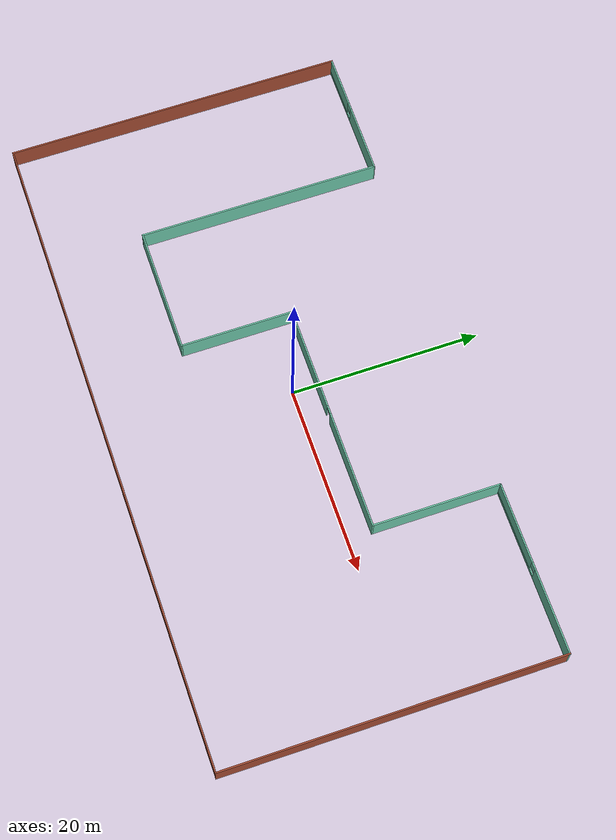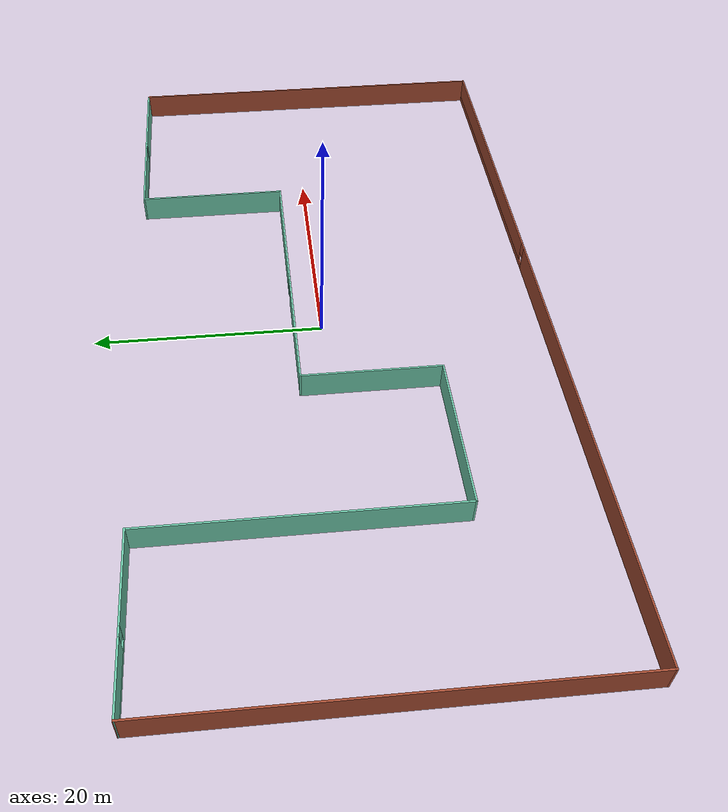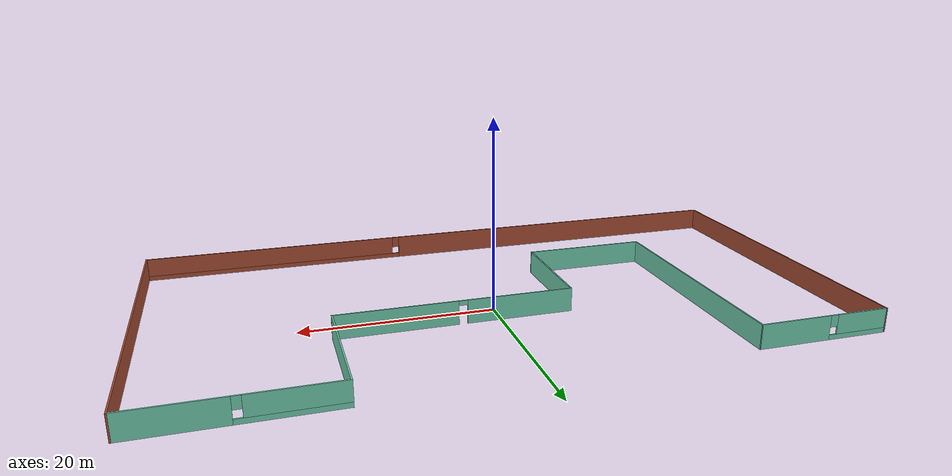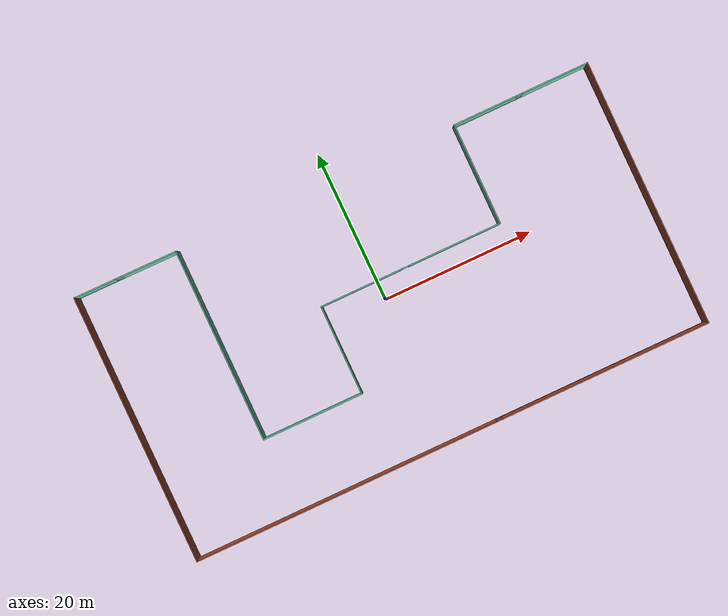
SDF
<?xml version='1.0'?>
<sdf version='1.6'>
  <model name='building_model'>
    <pose frame=''>0.098942 -1.55662 0 0 -0 0</pose>
    <link name='Wall_0'>
      <collision name='Wall_0_Collision'>
        <geometry>
          <box>
            <size>36 0.15 2.5</size>
          </box>
        </geometry>
        <pose frame=''>0 0 1.25 0 -0 0</pose>
      </collision>
      <visual name='Wall_0_Visual'>
        <pose frame=''>0 0 1.25 0 -0 0</pose>
        <geometry>
          <box>
            <size>36 0.15 2.5</size>
          </box>
        </geometry>
        <material>
          <script>
            <uri>file://media/materials/scripts/gazebo.material</uri>
            <name>Gazebo/Bricks</name>
          </script>
          <ambient>0.435294 0.796078 0.67451 1</ambient>
        </material>
        <meta>
          <layer>0</layer>
        </meta>
      </visual>
      <pose frame=''>-34.7997 -0.00027 0 0 0 -1.5708</pose>
    </link>
    <link name='Wall_1'>
      <pose frame=''>0.000272 -17.9253 0 0 -0 0</pose>
      <visual name='Wall_1_Visual_0'>
        <pose frame=''>-14.4324 0 1.25 0 -0 0</pose>
        <geometry>
          <box>
            <size>40.8853 0.15 2.5</size>
          </box>
        </geometry>
        <material>
          <script>
            <uri>file://media/materials/scripts/gazebo.material</uri>
            <name>Gazebo/Bricks</name>
          </script>
          <ambient>0.435294 0.796078 0.67451 1</ambient>
        </material>
        <meta>
          <layer>0</layer>
        </meta>
      </visual>
      <collision name='Wall_1_Collision_0'>
        <geometry>
          <box>
            <size>40.8853 0.15 2.5</size>
          </box>
        </geometry>
        <pose frame=''>-14.4324 0 1.25 0 -0 0</pose>
      </collision>
      <visual name='Wall_1_Visual_1'>
        <pose frame=''>20.4426 0 0.25 0 -0 0</pose>
        <geometry>
          <box>
            <size>28.8647 0.15 0.5</size>
          </box>
        </geometry>
        <material>
          <script>
            <uri>file://media/materials/scripts/gazebo.material</uri>
            <name>Gazebo/Bricks</name>
          </script>
          <ambient>0.435294 0.796078 0.67451 1</ambient>
        </material>
        <meta>
          <layer>0</layer>
        </meta>
      </visual>
      <collision name='Wall_1_Collision_1'>
        <geometry>
          <box>
            <size>28.8647 0.15 0.5</size>
          </box>
        </geometry>
        <pose frame=''>20.4426 0 0.25 0 -0 0</pose>
      </collision>
      <visual name='Wall_1_Visual_2'>
        <pose frame=''>20.8426 0 1.5 0 -0 0</pose>
        <geometry>
          <box>
            <size>28.0647 0.15 2</size>
          </box>
        </geometry>
        <material>
          <script>
            <uri>file://media/materials/scripts/gazebo.material</uri>
            <name>Gazebo/Bricks</name>
          </script>
          <ambient>0.435294 0.796078 0.67451 1</ambient>
        </material>
        <meta>
          <layer>0</layer>
        </meta>
      </visual>
      <collision name='Wall_1_Collision_2'>
        <geometry>
          <box>
            <size>28.0647 0.15 2</size>
          </box>
        </geometry>
        <pose frame=''>20.8426 0 1.5 0 -0 0</pose>
      </collision>
      <visual name='Wall_1_Visual_3'>
        <pose frame=''>6.41026 0 1.9 0 -0 0</pose>
        <geometry>
          <box>
            <size>0.8 0.15 1.2</size>
          </box>
        </geometry>
        <material>
          <script>
            <uri>file://media/materials/scripts/gazebo.material</uri>
            <name>Gazebo/Bricks</name>
          </script>
          <ambient>0.435294 0.796078 0.67451 1</ambient>
        </material>
        <meta>
          <layer>0</layer>
        </meta>
      </visual>
      <collision name='Wall_1_Collision_3'>
        <geometry>
          <box>
            <size>0.8 0.15 1.2</size>
          </box>
        </geometry>
        <pose frame=''>6.41026 0 1.9 0 -0 0</pose>
      </collision>
    </link>
    <link name='Wall_2'>
      <collision name='Wall_2_Collision'>
        <geometry>
          <box>
            <size>35.5 0.15 2.5</size>
          </box>
        </geometry>
        <pose frame=''>0 0 1.25 0 -0 0</pose>
      </collision>
      <visual name='Wall_2_Visual'>
        <pose frame=''>0 0 1.25 0 -0 0</pose>
        <geometry>
          <box>
            <size>35.5 0.15 2.5</size>
          </box>
        </geometry>
        <material>
          <script>
            <uri>file://media/materials/scripts/gazebo.material</uri>
            <name>Gazebo/Bricks</name>
          </script>
          <ambient>0.435294 0.796078 0.67451 1</ambient>
        </material>
        <meta>
          <layer>0</layer>
        </meta>
      </visual>
      <pose frame=''>34.8003 -0.25027 0 0 -0 1.5708</pose>
    </link>
    <link name='Wall_3'>
      <pose frame=''>25.7503 17.4247 0 0 -0 3.14159</pose>
      <visual name='Wall_3_Visual_0'>
        <pose frame=''>-4.68361 0 1.25 0 -0 0</pose>
        <geometry>
          <box>
            <size>8.88279 0.15 2.5</size>
          </box>
        </geometry>
        <material>
          <script>
            <uri>file://media/materials/scripts/gazebo.material</uri>
            <name>Gazebo/Grey</name>
          </script>
          <ambient>0.435294 0.796078 0.67451 1</ambient>
        </material>
        <meta>
          <layer>0</layer>
        </meta>
      </visual>
      <collision name='Wall_3_Collision_0'>
        <geometry>
          <box>
            <size>8.88279 0.15 2.5</size>
          </box>
        </geometry>
        <pose frame=''>-4.68361 0 1.25 0 -0 0</pose>
      </collision>
      <visual name='Wall_3_Visual_1'>
        <pose frame=''>4.44139 0 0.25 0 -0 0</pose>
        <geometry>
          <box>
            <size>9.36721 0.15 0.5</size>
          </box>
        </geometry>
        <material>
          <script>
            <uri>file://media/materials/scripts/gazebo.material</uri>
            <name>Gazebo/Grey</name>
          </script>
          <ambient>0.435294 0.796078 0.67451 1</ambient>
        </material>
        <meta>
          <layer>0</layer>
        </meta>
      </visual>
      <collision name='Wall_3_Collision_1'>
        <geometry>
          <box>
            <size>9.36721 0.15 0.5</size>
          </box>
        </geometry>
        <pose frame=''>4.44139 0 0.25 0 -0 0</pose>
      </collision>
      <visual name='Wall_3_Visual_2'>
        <pose frame=''>4.84139 0 1.5 0 -0 0</pose>
        <geometry>
          <box>
            <size>8.56721 0.15 2</size>
          </box>
        </geometry>
        <material>
          <script>
            <uri>file://media/materials/scripts/gazebo.material</uri>
            <name>Gazebo/Grey</name>
          </script>
          <ambient>0.435294 0.796078 0.67451 1</ambient>
        </material>
        <meta>
          <layer>0</layer>
        </meta>
      </visual>
      <collision name='Wall_3_Collision_2'>
        <geometry>
          <box>
            <size>8.56721 0.15 2</size>
          </box>
        </geometry>
        <pose frame=''>4.84139 0 1.5 0 -0 0</pose>
      </collision>
      <visual name='Wall_3_Visual_3'>
        <pose frame=''>0.157787 0 1.9 0 -0 0</pose>
        <geometry>
          <box>
            <size>0.8 0.15 1.2</size>
          </box>
        </geometry>
        <material>
          <script>
            <uri>file://media/materials/scripts/gazebo.material</uri>
            <name>Gazebo/Grey</name>
          </script>
          <ambient>0.435294 0.796078 0.67451 1</ambient>
        </material>
        <meta>
          <layer>0</layer>
        </meta>
      </visual>
      <collision name='Wall_3_Collision_3'>
        <geometry>
          <box>
            <size>0.8 0.15 1.2</size>
          </box>
        </geometry>
        <pose frame=''>0.157787 0 1.9 0 -0 0</pose>
      </collision>
    </link>
    <link name='Wall_4'>
      <collision name='Wall_4_Collision'>
        <geometry>
          <box>
            <size>13.5 0.15 2.5</size>
          </box>
        </geometry>
        <pose frame=''>0 0 1.25 0 -0 0</pose>
      </collision>
      <visual name='Wall_4_Visual'>
        <pose frame=''>0 0 1.25 0 -0 0</pose>
        <geometry>
          <box>
            <size>13.5 0.15 2.5</size>
          </box>
        </geometry>
        <material>
          <script>
            <uri>file://media/materials/scripts/gazebo.material</uri>
            <name>Gazebo/Grey</name>
          </script>
          <ambient>0.435294 0.796078 0.67451 1</ambient>
        </material>
        <meta>
          <layer>0</layer>
        </meta>
      </visual>
      <pose frame=''>16.7003 10.7497 0 0 0 -1.5708</pose>
    </link>
    <link name='Wall_5'>
      <pose frame=''>4.52527 4.07473 0 0 -0 3.14159</pose>
      <visual name='Wall_5_Visual_0'>
        <pose frame=''>-5.99321 0 1.25 0 -0 0</pose>
        <geometry>
          <box>
            <size>12.5136 0.15 2.5</size>
          </box>
        </geometry>
        <material>
          <script>
            <uri>file://media/materials/scripts/gazebo.material</uri>
            <name>Gazebo/Grey</name>
          </script>
          <ambient>0.435294 0.796078 0.67451 1</ambient>
        </material>
        <meta>
          <layer>0</layer>
        </meta>
      </visual>
      <collision name='Wall_5_Collision_0'>
        <geometry>
          <box>
            <size>12.5136 0.15 2.5</size>
          </box>
        </geometry>
        <pose frame=''>-5.99321 0 1.25 0 -0 0</pose>
      </collision>
      <visual name='Wall_5_Visual_1'>
        <pose frame=''>6.70679 0 1.25 0 -0 0</pose>
        <geometry>
          <box>
            <size>11.0864 0.15 2.5</size>
          </box>
        </geometry>
        <material>
          <script>
            <uri>file://media/materials/scripts/gazebo.material</uri>
            <name>Gazebo/Grey</name>
          </script>
          <ambient>0.435294 0.796078 0.67451 1</ambient>
        </material>
        <meta>
          <layer>0</layer>
        </meta>
      </visual>
      <collision name='Wall_5_Collision_1'>
        <geometry>
          <box>
            <size>11.0864 0.15 2.5</size>
          </box>
        </geometry>
        <pose frame=''>6.70679 0 1.25 0 -0 0</pose>
      </collision>
      <visual name='Wall_5_Visual_2'>
        <pose frame=''>0.713585 0 2.25 0 -0 0</pose>
        <geometry>
          <box>
            <size>0.9 0.15 0.5</size>
          </box>
        </geometry>
        <material>
          <script>
            <uri>file://media/materials/scripts/gazebo.material</uri>
            <name>Gazebo/Grey</name>
          </script>
          <ambient>0.435294 0.796078 0.67451 1</ambient>
        </material>
        <meta>
          <layer>0</layer>
        </meta>
      </visual>
      <collision name='Wall_5_Collision_2'>
        <geometry>
          <box>
            <size>0.9 0.15 0.5</size>
          </box>
        </geometry>
        <pose frame=''>0.713585 0 2.25 0 -0 0</pose>
      </collision>
    </link>
    <link name='Wall_6'>
      <collision name='Wall_6_Collision'>
        <geometry>
          <box>
            <size>12 0.15 2.5</size>
          </box>
        </geometry>
        <pose frame=''>0 0 1.25 0 -0 0</pose>
      </collision>
      <visual name='Wall_6_Visual'>
        <pose frame=''>0 0 1.25 0 -0 0</pose>
        <geometry>
          <box>
            <size>12 0.15 2.5</size>
          </box>
        </geometry>
        <material>
          <script>
            <uri>file://media/materials/scripts/gazebo.material</uri>
            <name>Gazebo/Grey</name>
          </script>
          <ambient>0.435294 0.796078 0.67451 1</ambient>
        </material>
        <meta>
          <layer>0</layer>
        </meta>
      </visual>
      <pose frame=''>-7.64973 -1.85027 0 0 0 -1.5708</pose>
    </link>
    <link name='Wall_7'>
      <collision name='Wall_7_Collision'>
        <geometry>
          <box>
            <size>13.5 0.15 2.5</size>
          </box>
        </geometry>
        <pose frame=''>0 0 1.25 0 -0 0</pose>
      </collision>
      <visual name='Wall_7_Visual'>
        <pose frame=''>0 0 1.25 0 -0 0</pose>
        <geometry>
          <box>
            <size>13.5 0.15 2.5</size>
          </box>
        </geometry>
        <material>
          <script>
            <uri>file://media/materials/scripts/gazebo.material</uri>
            <name>Gazebo/Grey</name>
          </script>
          <ambient>0.435294 0.796078 0.67451 1</ambient>
        </material>
        <meta>
          <layer>0</layer>
        </meta>
      </visual>
      <pose frame=''>-14.3247 -7.77527 0 0 -0 3.14159</pose>
    </link>
    <link name='Wall_8'>
      <collision name='Wall_8_Collision'>
        <geometry>
          <box>
            <size>25.75 0.15 2.5</size>
          </box>
        </geometry>
        <pose frame=''>0 0 1.25 0 -0 0</pose>
      </collision>
      <visual name='Wall_8_Visual'>
        <pose frame=''>0 0 1.25 0 -0 0</pose>
        <geometry>
          <box>
            <size>25.75 0.15 2.5</size>
          </box>
        </geometry>
        <material>
          <script>
            <uri>file://media/materials/scripts/gazebo.material</uri>
            <name>Gazebo/Grey</name>
          </script>
          <ambient>0.435294 0.796078 0.67451 1</ambient>
        </material>
        <meta>
          <layer>0</layer>
        </meta>
      </visual>
      <pose frame=''>-20.9997 5.02473 0 0 -0 1.5708</pose>
    </link>
    <link name='Wall_9'>
      <pose frame=''>-27.8997 17.8747 0 0 -0 3.13435</pose>
      <visual name='Wall_9_Visual_0'>
        <pose frame=''>-3.20663 0 1.25 0 -0 0</pose>
        <geometry>
          <box>
            <size>7.53709 0.15 2.5</size>
          </box>
        </geometry>
        <material>
          <script>
            <uri>file://media/materials/scripts/gazebo.material</uri>
            <name>Gazebo/Grey</name>
          </script>
          <ambient>0.435294 0.796078 0.67451 1</ambient>
        </material>
        <meta>
          <layer>0</layer>
        </meta>
      </visual>
      <collision name='Wall_9_Collision_0'>
        <geometry>
          <box>
            <size>7.53709 0.15 2.5</size>
          </box>
        </geometry>
        <pose frame=''>-3.20663 0 1.25 0 -0 0</pose>
      </collision>
      <visual name='Wall_9_Visual_1'>
        <pose frame=''>3.76855 0 0.25 0 -0 0</pose>
        <geometry>
          <box>
            <size>6.41327 0.15 0.5</size>
          </box>
        </geometry>
        <material>
          <script>
            <uri>file://media/materials/scripts/gazebo.material</uri>
            <name>Gazebo/Grey</name>
          </script>
          <ambient>0.435294 0.796078 0.67451 1</ambient>
        </material>
        <meta>
          <layer>0</layer>
        </meta>
      </visual>
      <collision name='Wall_9_Collision_1'>
        <geometry>
          <box>
            <size>6.41327 0.15 0.5</size>
          </box>
        </geometry>
        <pose frame=''>3.76855 0 0.25 0 -0 0</pose>
      </collision>
      <visual name='Wall_9_Visual_2'>
        <pose frame=''>4.16855 0 1.5 0 -0 0</pose>
        <geometry>
          <box>
            <size>5.61327 0.15 2</size>
          </box>
        </geometry>
        <material>
          <script>
            <uri>file://media/materials/scripts/gazebo.material</uri>
            <name>Gazebo/Grey</name>
          </script>
          <ambient>0.435294 0.796078 0.67451 1</ambient>
        </material>
        <meta>
          <layer>0</layer>
        </meta>
      </visual>
      <collision name='Wall_9_Collision_2'>
        <geometry>
          <box>
            <size>5.61327 0.15 2</size>
          </box>
        </geometry>
        <pose frame=''>4.16855 0 1.5 0 -0 0</pose>
      </collision>
      <visual name='Wall_9_Visual_3'>
        <pose frame=''>0.961913 0 1.9 0 -0 0</pose>
        <geometry>
          <box>
            <size>0.8 0.15 1.2</size>
          </box>
        </geometry>
        <material>
          <script>
            <uri>file://media/materials/scripts/gazebo.material</uri>
            <name>Gazebo/Grey</name>
          </script>
          <ambient>0.435294 0.796078 0.67451 1</ambient>
        </material>
        <meta>
          <layer>0</layer>
        </meta>
      </visual>
      <collision name='Wall_9_Collision_3'>
        <geometry>
          <box>
            <size>0.8 0.15 1.2</size>
          </box>
        </geometry>
        <pose frame=''>0.961913 0 1.9 0 -0 0</pose>
      </collision>
    </link>
    <static>1</static>
  </model>
</sdf>
